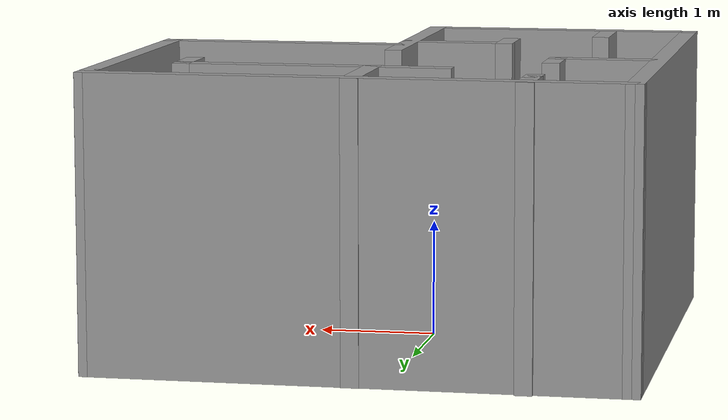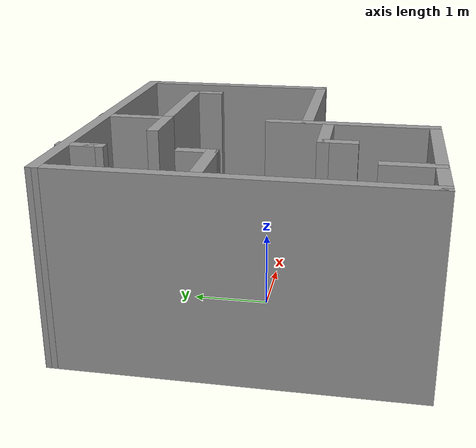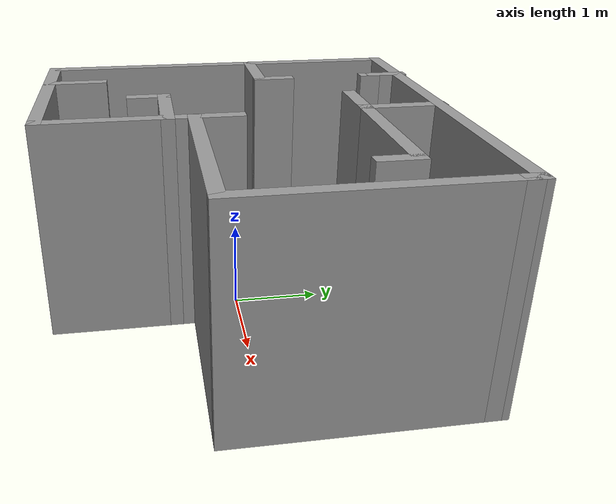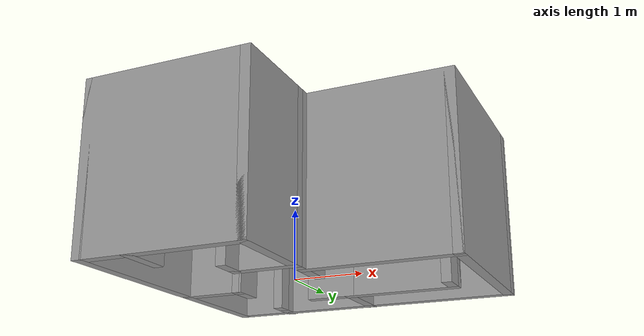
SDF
<?xml version='1.0'?>
<sdf version='1.6'>
  <model name='maze'>
    <pose frame=''>0.23 0.09 0 0 -0 0</pose>
    <link name='Wall_0'>
      <collision name='Wall_0_Collision'>
        <geometry>
          <box>
            <size>4.5 0.15 2.5</size>
          </box>
        </geometry>
        <pose frame=''>0 0 1.25 0 -0 0</pose>
      </collision>
      <visual name='Wall_0_Visual'>
        <pose frame=''>0 0 1.25 0 -0 0</pose>
        <geometry>
          <box>
            <size>4.5 0.15 2.5</size>
          </box>
        </geometry>
        <material>
          <script>
            <uri>file://media/materials/scripts/gazebo.material</uri>
            <name>Gazebo/Grey</name>
          </script>
          <ambient>1 1 1 1</ambient>
        </material>
      </visual>
      <pose frame=''>-2.23 -0.015 0 0 0 -1.5708</pose>
    </link>
    <link name='Wall_1'>
      <collision name='Wall_1_Collision'>
        <geometry>
          <box>
            <size>2.5 0.15 2.5</size>
          </box>
        </geometry>
        <pose frame=''>0 0 1.25 0 -0 0</pose>
      </collision>
      <visual name='Wall_1_Visual'>
        <pose frame=''>0 0 1.25 0 -0 0</pose>
        <geometry>
          <box>
            <size>2.5 0.15 2.5</size>
          </box>
        </geometry>
        <material>
          <script>
            <uri>file://media/materials/scripts/gazebo.material</uri>
            <name>Gazebo/Grey</name>
          </script>
          <ambient>1 1 1 1</ambient>
        </material>
      </visual>
      <pose frame=''>-1.055 -2.19 0 0 -0 0</pose>
    </link>
    <link name='Wall_10'>
      <collision name='Wall_10_Collision'>
        <geometry>
          <box>
            <size>0.25 0.15 2.5</size>
          </box>
        </geometry>
        <pose frame=''>0 0 1.25 0 -0 0</pose>
      </collision>
      <visual name='Wall_10_Visual'>
        <pose frame=''>0 0 1.25 0 -0 0</pose>
        <geometry>
          <box>
            <size>0.25 0.15 2.5</size>
          </box>
        </geometry>
        <material>
          <script>
            <uri>file://media/materials/scripts/gazebo.material</uri>
            <name>Gazebo/Grey</name>
          </script>
          <ambient>1 1 1 1</ambient>
        </material>
      </visual>
      <pose frame=''>-1.37 1.79 0 0 0 -1.5708</pose>
    </link>
    <link name='Wall_12'>
      <collision name='Wall_12_Collision'>
        <geometry>
          <box>
            <size>1 0.15 2.5</size>
          </box>
        </geometry>
        <pose frame=''>0 0 1.25 0 -0 0</pose>
      </collision>
      <visual name='Wall_12_Visual'>
        <pose frame=''>0 0 1.25 0 -0 0</pose>
        <geometry>
          <box>
            <size>1 0.15 2.5</size>
          </box>
        </geometry>
        <material>
          <script>
            <uri>file://media/materials/scripts/gazebo.material</uri>
            <name>Gazebo/Grey</name>
          </script>
          <ambient>1 1 1 1</ambient>
        </material>
      </visual>
      <pose frame=''>0.04 1.735 0 0 0 -1.5708</pose>
    </link>
    <link name='Wall_13'>
      <collision name='Wall_13_Collision'>
        <geometry>
          <box>
            <size>1.75 0.15 2.5</size>
          </box>
        </geometry>
        <pose frame=''>0 0 1.25 0 -0 0</pose>
      </collision>
      <visual name='Wall_13_Visual'>
        <pose frame=''>0 0 1.25 0 -0 0</pose>
        <geometry>
          <box>
            <size>1.75 0.15 2.5</size>
          </box>
        </geometry>
        <material>
          <script>
            <uri>file://media/materials/scripts/gazebo.material</uri>
            <name>Gazebo/Grey</name>
          </script>
          <ambient>1 1 1 1</ambient>
        </material>
      </visual>
      <pose frame=''>0.84 1.31 0 0 -0 0</pose>
    </link>
    <link name='Wall_14'>
      <collision name='Wall_14_Collision'>
        <geometry>
          <box>
            <size>0.5 0.15 2.5</size>
          </box>
        </geometry>
        <pose frame=''>0 0 1.25 0 -0 0</pose>
      </collision>
      <visual name='Wall_14_Visual'>
        <pose frame=''>0 0 1.25 0 -0 0</pose>
        <geometry>
          <box>
            <size>0.5 0.15 2.5</size>
          </box>
        </geometry>
        <material>
          <script>
            <uri>file://media/materials/scripts/gazebo.material</uri>
            <name>Gazebo/Grey</name>
          </script>
          <ambient>1 1 1 1</ambient>
        </material>
      </visual>
      <pose frame=''>1.64 1.135 0 0 0 -1.5708</pose>
    </link>
    <link name='Wall_16'>
      <collision name='Wall_16_Collision'>
        <geometry>
          <box>
            <size>0.75 0.15 2.5</size>
          </box>
        </geometry>
        <pose frame=''>0 0 1.25 0 -0 0</pose>
      </collision>
      <visual name='Wall_16_Visual'>
        <pose frame=''>0 0 1.25 0 -0 0</pose>
        <geometry>
          <box>
            <size>0.75 0.15 2.5</size>
          </box>
        </geometry>
        <material>
          <script>
            <uri>file://media/materials/scripts/gazebo.material</uri>
            <name>Gazebo/Grey</name>
          </script>
          <ambient>1 1 1 1</ambient>
        </material>
      </visual>
      <pose frame=''>-0.26 1.31 0 0 -0 3.14159</pose>
    </link>
    <link name='Wall_18'>
      <collision name='Wall_18_Collision'>
        <geometry>
          <box>
            <size>1 0.15 2.5</size>
          </box>
        </geometry>
        <pose frame=''>0 0 1.25 0 -0 0</pose>
      </collision>
      <visual name='Wall_18_Visual'>
        <pose frame=''>0 0 1.25 0 -0 0</pose>
        <geometry>
          <box>
            <size>1 0.15 2.5</size>
          </box>
        </geometry>
        <material>
          <script>
            <uri>file://media/materials/scripts/gazebo.material</uri>
            <name>Gazebo/Grey</name>
          </script>
          <ambient>1 1 1 1</ambient>
        </material>
      </visual>
      <pose frame=''>-1.795 0.38 0 0 -0 0</pose>
    </link>
    <link name='Wall_19'>
      <collision name='Wall_19_Collision'>
        <geometry>
          <box>
            <size>0.5 0.15 2.5</size>
          </box>
        </geometry>
        <pose frame=''>0 0 1.25 0 -0 0</pose>
      </collision>
      <visual name='Wall_19_Visual'>
        <pose frame=''>0 0 1.25 0 -0 0</pose>
        <geometry>
          <box>
            <size>0.5 0.15 2.5</size>
          </box>
        </geometry>
        <material>
          <script>
            <uri>file://media/materials/scripts/gazebo.material</uri>
            <name>Gazebo/Grey</name>
          </script>
          <ambient>1 1 1 1</ambient>
        </material>
      </visual>
      <pose frame=''>-1.37 0.555 0 0 -0 1.5708</pose>
    </link>
    <link name='Wall_2'>
      <collision name='Wall_2_Collision'>
        <geometry>
          <box>
            <size>2.25 0.15 2.5</size>
          </box>
        </geometry>
        <pose frame=''>0 0 1.25 0 -0 0</pose>
      </collision>
      <visual name='Wall_2_Visual'>
        <pose frame=''>0 0 1.25 0 -0 0</pose>
        <geometry>
          <box>
            <size>2.25 0.15 2.5</size>
          </box>
        </geometry>
        <material>
          <script>
            <uri>file://media/materials/scripts/gazebo.material</uri>
            <name>Gazebo/Grey</name>
          </script>
          <ambient>1 1 1 1</ambient>
        </material>
      </visual>
      <pose frame=''>0.12 -1.14 0 0 -0 1.5708</pose>
    </link>
    <link name='Wall_21'>
      <collision name='Wall_21_Collision'>
        <geometry>
          <box>
            <size>1 0.15 2.5</size>
          </box>
        </geometry>
        <pose frame=''>0 0 1.25 0 -0 0</pose>
      </collision>
      <visual name='Wall_21_Visual'>
        <pose frame=''>0 0 1.25 0 -0 0</pose>
        <geometry>
          <box>
            <size>1 0.15 2.5</size>
          </box>
        </geometry>
        <material>
          <script>
            <uri>file://media/materials/scripts/gazebo.material</uri>
            <name>Gazebo/Grey</name>
          </script>
          <ambient>1 1 1 1</ambient>
        </material>
      </visual>
      <pose frame=''>-0.305 -0.84 0 0 -0 3.14159</pose>
    </link>
    <link name='Wall_22'>
      <collision name='Wall_22_Collision'>
        <geometry>
          <box>
            <size>0.5 0.15 2.5</size>
          </box>
        </geometry>
        <pose frame=''>0 0 1.25 0 -0 0</pose>
      </collision>
      <visual name='Wall_22_Visual'>
        <pose frame=''>0 0 1.25 0 -0 0</pose>
        <geometry>
          <box>
            <size>0.5 0.15 2.5</size>
          </box>
        </geometry>
        <material>
          <script>
            <uri>file://media/materials/scripts/gazebo.material</uri>
            <name>Gazebo/Grey</name>
          </script>
          <ambient>1 1 1 1</ambient>
        </material>
      </visual>
      <pose frame=''>-0.73 -1.015 0 0 0 -1.5708</pose>
    </link>
    <link name='Wall_24'>
      <collision name='Wall_24_Collision'>
        <geometry>
          <box>
            <size>0.75 0.15 2.5</size>
          </box>
        </geometry>
        <pose frame=''>0 0 1.25 0 -0 0</pose>
      </collision>
      <visual name='Wall_24_Visual'>
        <pose frame=''>0 0 1.25 0 -0 0</pose>
        <geometry>
          <box>
            <size>0.75 0.15 2.5</size>
          </box>
        </geometry>
        <material>
          <script>
            <uri>file://media/materials/scripts/gazebo.material</uri>
            <name>Gazebo/Grey</name>
          </script>
          <ambient>1 1 1 1</ambient>
        </material>
      </visual>
      <pose frame=''>-1.5 -1.88 0 0 -0 1.5708</pose>
    </link>
    <link name='Wall_4'>
      <collision name='Wall_4_Collision'>
        <geometry>
          <box>
            <size>2.25 0.15 2.5</size>
          </box>
        </geometry>
        <pose frame=''>0 0 1.25 0 -0 0</pose>
      </collision>
      <visual name='Wall_4_Visual'>
        <pose frame=''>0 0 1.25 0 -0 0</pose>
        <geometry>
          <box>
            <size>2.25 0.15 2.5</size>
          </box>
        </geometry>
        <material>
          <script>
            <uri>file://media/materials/scripts/gazebo.material</uri>
            <name>Gazebo/Grey</name>
          </script>
          <ambient>1 1 1 1</ambient>
        </material>
      </visual>
      <pose frame=''>1.18 -0.56 0 0 -0 0</pose>
    </link>
    <link name='Wall_5'>
      <collision name='Wall_5_Collision'>
        <geometry>
          <box>
            <size>2.75 0.15 2.5</size>
          </box>
        </geometry>
        <pose frame=''>0 0 1.25 0 -0 0</pose>
      </collision>
      <visual name='Wall_5_Visual'>
        <pose frame=''>0 0 1.25 0 -0 0</pose>
        <geometry>
          <box>
            <size>2.75 0.15 2.5</size>
          </box>
        </geometry>
        <material>
          <script>
            <uri>file://media/materials/scripts/gazebo.material</uri>
            <name>Gazebo/Grey</name>
          </script>
          <ambient>1 1 1 1</ambient>
        </material>
      </visual>
      <pose frame=''>2.23 0.74 0 0 -0 1.5708</pose>
    </link>
    <link name='Wall_6'>
      <collision name='Wall_6_Collision'>
        <geometry>
          <box>
            <size>0.25 0.15 2.5</size>
          </box>
        </geometry>
        <pose frame=''>0 0 1.25 0 -0 0</pose>
      </collision>
      <visual name='Wall_6_Visual'>
        <pose frame=''>0 0 1.25 0 -0 0</pose>
        <geometry>
          <box>
            <size>0.25 0.15 2.5</size>
          </box>
        </geometry>
        <material>
          <script>
            <uri>file://media/materials/scripts/gazebo.material</uri>
            <name>Gazebo/Grey</name>
          </script>
          <ambient>1 1 1 1</ambient>
        </material>
      </visual>
      <pose frame=''>2.23 2.09 0 0 -0 1.5708</pose>
    </link>
    <link name='Wall_7'>
      <collision name='Wall_7_Collision'>
        <geometry>
          <box>
            <size>4.61005 0.15 2.5</size>
          </box>
        </geometry>
        <pose frame=''>0 0 1.25 0 -0 0</pose>
      </collision>
      <visual name='Wall_7_Visual'>
        <pose frame=''>0 0 1.25 0 -0 0</pose>
        <geometry>
          <box>
            <size>4.61005 0.15 2.5</size>
          </box>
        </geometry>
        <material>
          <script>
            <uri>file://media/materials/scripts/gazebo.material</uri>
            <name>Gazebo/Grey</name>
          </script>
          <ambient>1 1 1 1</ambient>
        </material>
      </visual>
      <pose frame=''>0 2.15 0 0 -0 3.13711</pose>
    </link>
    <link name='Wall_9'>
      <collision name='Wall_9_Collision'>
        <geometry>
          <box>
            <size>0.5 0.15 2.5</size>
          </box>
        </geometry>
        <pose frame=''>0 0 1.25 0 -0 0</pose>
      </collision>
      <visual name='Wall_9_Visual'>
        <pose frame=''>0 0 1.25 0 -0 0</pose>
        <geometry>
          <box>
            <size>0.5 0.15 2.5</size>
          </box>
        </geometry>
        <material>
          <script>
            <uri>file://media/materials/scripts/gazebo.material</uri>
            <name>Gazebo/Grey</name>
          </script>
          <ambient>1 1 1 1</ambient>
        </material>
      </visual>
      <pose frame=''>-1.37 2.015 0 0 0 -1.5708</pose>
    </link>
    <static>1</static>
  </model>
</sdf>
